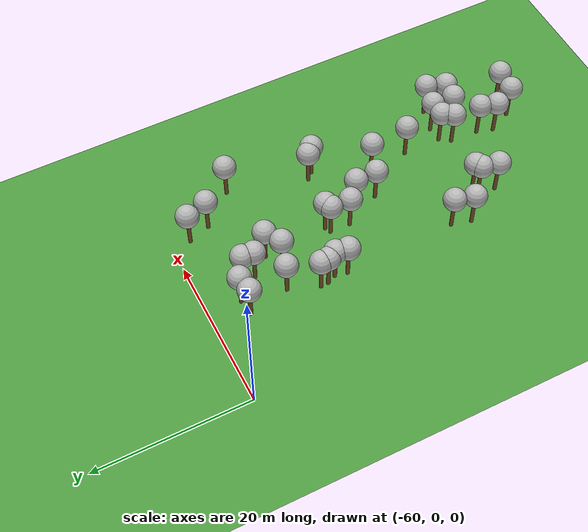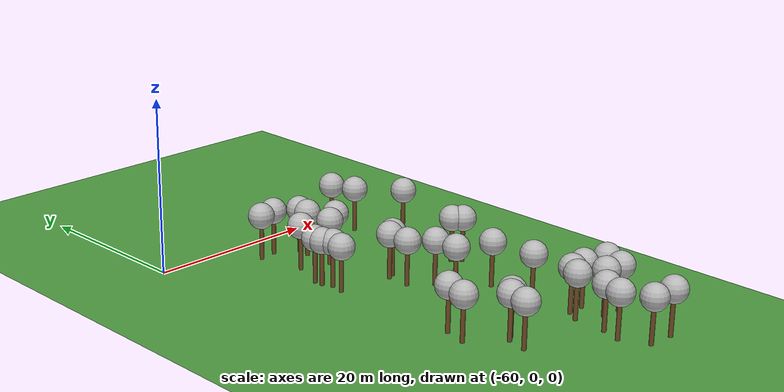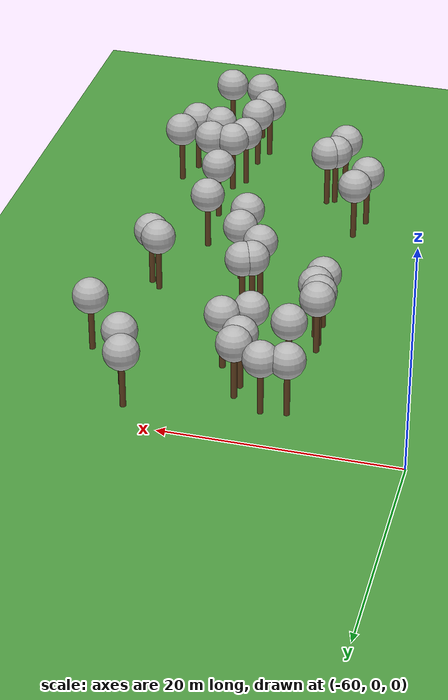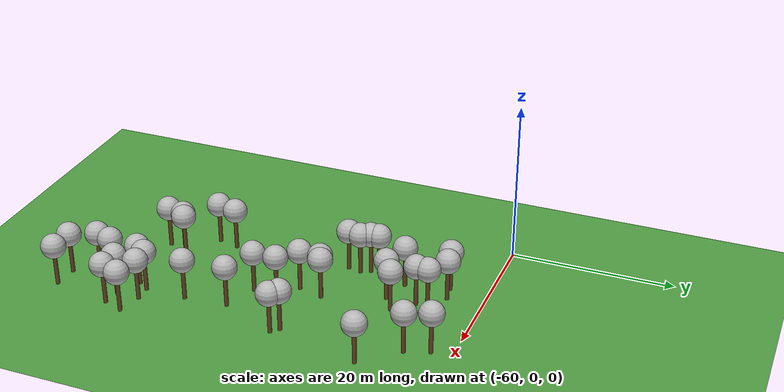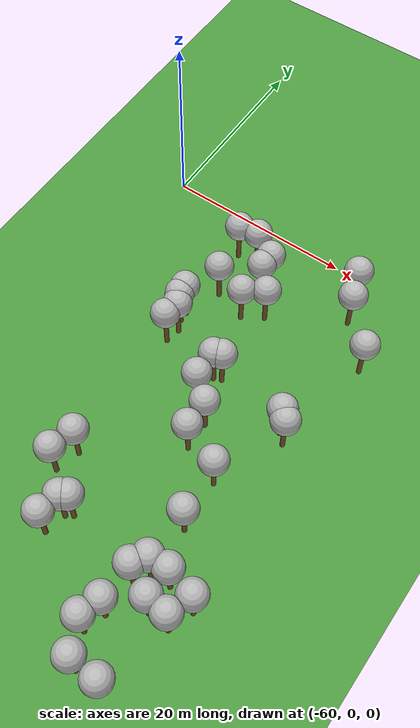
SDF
<sdf version="1.5">
 <world name="default">
  <model name="tree_simple481">
   <static>1</static>
   <link name="link">
    <pose>0 0 0.1 0 -0 0</pose>
    <collision name="collision_trunk">
     <pose>0 0 2 0 -0 0</pose>
     <geometry><cylinder><radius>0.25</radius><length>4</length></cylinder></geometry>
    </collision>
    <collision name="collision_treetop">
     <pose>0 0 5.2 0 -0 0</pose>
     <geometry><sphere><radius>1.5</radius></sphere></geometry>
    </collision>
    <visual name="trunk">
     <pose>0 0 2 0 -0 0</pose>
     <geometry><cylinder><radius>0.25</radius><length>4</length></cylinder></geometry>
     <material>
      <script>
       <uri>model://tree_simple/scripts</uri>
       <uri>model://tree_simple/materials/textures</uri>
       <name>TreeSimple/Trunk</name>
      </script>
     </material>
    </visual>
    <visual name="treetop">
     <pose>0 0 5.2 0 -0 0</pose>
     <geometry><sphere><radius>1.5</radius></sphere></geometry>
     <material>
      <script>
       <uri>model://tree_simple/scripts</uri>
       <uri>model://tree_simple/materials/textures</uri>
       <name>TreeSimple/Treetop</name>
      </script>
     </material>
    </visual>
   </link>
   <pose>-37.2553351017 -39.4739685818 0 0 -0 0</pose>
  </model>
  <model name="tree_simple438">
   <static>1</static>
   <link name="link">
    <pose>0 0 0.1 0 -0 0</pose>
    <collision name="collision_trunk">
     <pose>0 0 2 0 -0 0</pose>
     <geometry><cylinder><radius>0.25</radius><length>4</length></cylinder></geometry>
    </collision>
    <collision name="collision_treetop">
     <pose>0 0 5.2 0 -0 0</pose>
     <geometry><sphere><radius>1.5</radius></sphere></geometry>
    </collision>
    <visual name="trunk">
     <pose>0 0 2 0 -0 0</pose>
     <geometry><cylinder><radius>0.25</radius><length>4</length></cylinder></geometry>
     <material>
      <script>
       <uri>model://tree_simple/scripts</uri>
       <uri>model://tree_simple/materials/textures</uri>
       <name>TreeSimple/Trunk</name>
      </script>
     </material>
    </visual>
    <visual name="treetop">
     <pose>0 0 5.2 0 -0 0</pose>
     <geometry><sphere><radius>1.5</radius></sphere></geometry>
     <material>
      <script>
       <uri>model://tree_simple/scripts</uri>
       <uri>model://tree_simple/materials/textures</uri>
       <name>TreeSimple/Treetop</name>
      </script>
     </material>
    </visual>
   </link>
   <pose>-34.2898013361 -38.0039942016 0 0 -0 0</pose>
  </model>
  <model name="tree_simple434">
   <static>1</static>
   <link name="link">
    <pose>0 0 0.1 0 -0 0</pose>
    <collision name="collision_trunk">
     <pose>0 0 2 0 -0 0</pose>
     <geometry><cylinder><radius>0.25</radius><length>4</length></cylinder></geometry>
    </collision>
    <collision name="collision_treetop">
     <pose>0 0 5.2 0 -0 0</pose>
     <geometry><sphere><radius>1.5</radius></sphere></geometry>
    </collision>
    <visual name="trunk">
     <pose>0 0 2 0 -0 0</pose>
     <geometry><cylinder><radius>0.25</radius><length>4</length></cylinder></geometry>
     <material>
      <script>
       <uri>model://tree_simple/scripts</uri>
       <uri>model://tree_simple/materials/textures</uri>
       <name>TreeSimple/Trunk</name>
      </script>
     </material>
    </visual>
    <visual name="treetop">
     <pose>0 0 5.2 0 -0 0</pose>
     <geometry><sphere><radius>1.5</radius></sphere></geometry>
     <material>
      <script>
       <uri>model://tree_simple/scripts</uri>
       <uri>model://tree_simple/materials/textures</uri>
       <name>TreeSimple/Treetop</name>
      </script>
     </material>
    </visual>
   </link>
   <pose>-43.1297442783 -18.5304452852 0 0 -0 0</pose>
  </model>
  <model name="tree_simple416">
   <static>1</static>
   <link name="link">
    <pose>0 0 0.1 0 -0 0</pose>
    <collision name="collision_trunk">
     <pose>0 0 2 0 -0 0</pose>
     <geometry><cylinder><radius>0.25</radius><length>4</length></cylinder></geometry>
    </collision>
    <collision name="collision_treetop">
     <pose>0 0 5.2 0 -0 0</pose>
     <geometry><sphere><radius>1.5</radius></sphere></geometry>
    </collision>
    <visual name="trunk">
     <pose>0 0 2 0 -0 0</pose>
     <geometry><cylinder><radius>0.25</radius><length>4</length></cylinder></geometry>
     <material>
      <script>
       <uri>model://tree_simple/scripts</uri>
       <uri>model://tree_simple/materials/textures</uri>
       <name>TreeSimple/Trunk</name>
      </script>
     </material>
    </visual>
    <visual name="treetop">
     <pose>0 0 5.2 0 -0 0</pose>
     <geometry><sphere><radius>1.5</radius></sphere></geometry>
     <material>
      <script>
       <uri>model://tree_simple/scripts</uri>
       <uri>model://tree_simple/materials/textures</uri>
       <name>TreeSimple/Treetop</name>
      </script>
     </material>
    </visual>
   </link>
   <pose>-31.2795871631 -38.7286210433 0 0 -0 0</pose>
  </model>
  <model name="tree_simple411">
   <static>1</static>
   <link name="link">
    <pose>0 0 0.1 0 -0 0</pose>
    <collision name="collision_trunk">
     <pose>0 0 2 0 -0 0</pose>
     <geometry><cylinder><radius>0.25</radius><length>4</length></cylinder></geometry>
    </collision>
    <collision name="collision_treetop">
     <pose>0 0 5.2 0 -0 0</pose>
     <geometry><sphere><radius>1.5</radius></sphere></geometry>
    </collision>
    <visual name="trunk">
     <pose>0 0 2 0 -0 0</pose>
     <geometry><cylinder><radius>0.25</radius><length>4</length></cylinder></geometry>
     <material>
      <script>
       <uri>model://tree_simple/scripts</uri>
       <uri>model://tree_simple/materials/textures</uri>
       <name>TreeSimple/Trunk</name>
      </script>
     </material>
    </visual>
    <visual name="treetop">
     <pose>0 0 5.2 0 -0 0</pose>
     <geometry><sphere><radius>1.5</radius></sphere></geometry>
     <material>
      <script>
       <uri>model://tree_simple/scripts</uri>
       <uri>model://tree_simple/materials/textures</uri>
       <name>TreeSimple/Treetop</name>
      </script>
     </material>
    </visual>
   </link>
   <pose>-32.1703266052 -41.1753069034 0 0 -0 0</pose>
  </model>
  <model name="tree_simple404">
   <static>1</static>
   <link name="link">
    <pose>0 0 0.1 0 -0 0</pose>
    <collision name="collision_trunk">
     <pose>0 0 2 0 -0 0</pose>
     <geometry><cylinder><radius>0.25</radius><length>4</length></cylinder></geometry>
    </collision>
    <collision name="collision_treetop">
     <pose>0 0 5.2 0 -0 0</pose>
     <geometry><sphere><radius>1.5</radius></sphere></geometry>
    </collision>
    <visual name="trunk">
     <pose>0 0 2 0 -0 0</pose>
     <geometry><cylinder><radius>0.25</radius><length>4</length></cylinder></geometry>
     <material>
      <script>
       <uri>model://tree_simple/scripts</uri>
       <uri>model://tree_simple/materials/textures</uri>
       <name>TreeSimple/Trunk</name>
      </script>
     </material>
    </visual>
    <visual name="treetop">
     <pose>0 0 5.2 0 -0 0</pose>
     <geometry><sphere><radius>1.5</radius></sphere></geometry>
     <material>
      <script>
       <uri>model://tree_simple/scripts</uri>
       <uri>model://tree_simple/materials/textures</uri>
       <name>TreeSimple/Treetop</name>
      </script>
     </material>
    </visual>
   </link>
   <pose>-45.4192895763 -37.6687183978 0 0 -0 0</pose>
  </model>
  <model name="tree_simple403">
   <static>1</static>
   <link name="link">
    <pose>0 0 0.1 0 -0 0</pose>
    <collision name="collision_trunk">
     <pose>0 0 2 0 -0 0</pose>
     <geometry><cylinder><radius>0.25</radius><length>4</length></cylinder></geometry>
    </collision>
    <collision name="collision_treetop">
     <pose>0 0 5.2 0 -0 0</pose>
     <geometry><sphere><radius>1.5</radius></sphere></geometry>
    </collision>
    <visual name="trunk">
     <pose>0 0 2 0 -0 0</pose>
     <geometry><cylinder><radius>0.25</radius><length>4</length></cylinder></geometry>
     <material>
      <script>
       <uri>model://tree_simple/scripts</uri>
       <uri>model://tree_simple/materials/textures</uri>
       <name>TreeSimple/Trunk</name>
      </script>
     </material>
    </visual>
    <visual name="treetop">
     <pose>0 0 5.2 0 -0 0</pose>
     <geometry><sphere><radius>1.5</radius></sphere></geometry>
     <material>
      <script>
       <uri>model://tree_simple/scripts</uri>
       <uri>model://tree_simple/materials/textures</uri>
       <name>TreeSimple/Treetop</name>
      </script>
     </material>
    </visual>
   </link>
   <pose>-49.5316989744 -17.555694289 0 0 -0 0</pose>
  </model>
  <model name="tree_simple396">
   <static>1</static>
   <link name="link">
    <pose>0 0 0.1 0 -0 0</pose>
    <collision name="collision_trunk">
     <pose>0 0 2 0 -0 0</pose>
     <geometry><cylinder><radius>0.25</radius><length>4</length></cylinder></geometry>
    </collision>
    <collision name="collision_treetop">
     <pose>0 0 5.2 0 -0 0</pose>
     <geometry><sphere><radius>1.5</radius></sphere></geometry>
    </collision>
    <visual name="trunk">
     <pose>0 0 2 0 -0 0</pose>
     <geometry><cylinder><radius>0.25</radius><length>4</length></cylinder></geometry>
     <material>
      <script>
       <uri>model://tree_simple/scripts</uri>
       <uri>model://tree_simple/materials/textures</uri>
       <name>TreeSimple/Trunk</name>
      </script>
     </material>
    </visual>
    <visual name="treetop">
     <pose>0 0 5.2 0 -0 0</pose>
     <geometry><sphere><radius>1.5</radius></sphere></geometry>
     <material>
      <script>
       <uri>model://tree_simple/scripts</uri>
       <uri>model://tree_simple/materials/textures</uri>
       <name>TreeSimple/Treetop</name>
      </script>
     </material>
    </visual>
   </link>
   <pose>-34.4954871255 -19.8377607827 0 0 -0 0</pose>
  </model>
  <model name="tree_simple375">
   <static>1</static>
   <link name="link">
    <pose>0 0 0.1 0 -0 0</pose>
    <collision name="collision_trunk">
     <pose>0 0 2 0 -0 0</pose>
     <geometry><cylinder><radius>0.25</radius><length>4</length></cylinder></geometry>
    </collision>
    <collision name="collision_treetop">
     <pose>0 0 5.2 0 -0 0</pose>
     <geometry><sphere><radius>1.5</radius></sphere></geometry>
    </collision>
    <visual name="trunk">
     <pose>0 0 2 0 -0 0</pose>
     <geometry><cylinder><radius>0.25</radius><length>4</length></cylinder></geometry>
     <material>
      <script>
       <uri>model://tree_simple/scripts</uri>
       <uri>model://tree_simple/materials/textures</uri>
       <name>TreeSimple/Trunk</name>
      </script>
     </material>
    </visual>
    <visual name="treetop">
     <pose>0 0 5.2 0 -0 0</pose>
     <geometry><sphere><radius>1.5</radius></sphere></geometry>
     <material>
      <script>
       <uri>model://tree_simple/scripts</uri>
       <uri>model://tree_simple/materials/textures</uri>
       <name>TreeSimple/Treetop</name>
      </script>
     </material>
    </visual>
   </link>
   <pose>-48.3845088934 -9.9079742 0 0 -0 0</pose>
  </model>
  <model name="tree_simple373">
   <static>1</static>
   <link name="link">
    <pose>0 0 0.1 0 -0 0</pose>
    <collision name="collision_trunk">
     <pose>0 0 2 0 -0 0</pose>
     <geometry><cylinder><radius>0.25</radius><length>4</length></cylinder></geometry>
    </collision>
    <collision name="collision_treetop">
     <pose>0 0 5.2 0 -0 0</pose>
     <geometry><sphere><radius>1.5</radius></sphere></geometry>
    </collision>
    <visual name="trunk">
     <pose>0 0 2 0 -0 0</pose>
     <geometry><cylinder><radius>0.25</radius><length>4</length></cylinder></geometry>
     <material>
      <script>
       <uri>model://tree_simple/scripts</uri>
       <uri>model://tree_simple/materials/textures</uri>
       <name>TreeSimple/Trunk</name>
      </script>
     </material>
    </visual>
    <visual name="treetop">
     <pose>0 0 5.2 0 -0 0</pose>
     <geometry><sphere><radius>1.5</radius></sphere></geometry>
     <material>
      <script>
       <uri>model://tree_simple/scripts</uri>
       <uri>model://tree_simple/materials/textures</uri>
       <name>TreeSimple/Treetop</name>
      </script>
     </material>
    </visual>
   </link>
   <pose>-43.1842610619 -21.2191114712 0 0 -0 0</pose>
  </model>
  <model name="tree_simple370">
   <static>1</static>
   <link name="link">
    <pose>0 0 0.1 0 -0 0</pose>
    <collision name="collision_trunk">
     <pose>0 0 2 0 -0 0</pose>
     <geometry><cylinder><radius>0.25</radius><length>4</length></cylinder></geometry>
    </collision>
    <collision name="collision_treetop">
     <pose>0 0 5.2 0 -0 0</pose>
     <geometry><sphere><radius>1.5</radius></sphere></geometry>
    </collision>
    <visual name="trunk">
     <pose>0 0 2 0 -0 0</pose>
     <geometry><cylinder><radius>0.25</radius><length>4</length></cylinder></geometry>
     <material>
      <script>
       <uri>model://tree_simple/scripts</uri>
       <uri>model://tree_simple/materials/textures</uri>
       <name>TreeSimple/Trunk</name>
      </script>
     </material>
    </visual>
    <visual name="treetop">
     <pose>0 0 5.2 0 -0 0</pose>
     <geometry><sphere><radius>1.5</radius></sphere></geometry>
     <material>
      <script>
       <uri>model://tree_simple/scripts</uri>
       <uri>model://tree_simple/materials/textures</uri>
       <name>TreeSimple/Treetop</name>
      </script>
     </material>
    </visual>
   </link>
   <pose>-36.749040883 -27.7198172667 0 0 -0 0</pose>
  </model>
  <model name="tree_simple369">
   <static>1</static>
   <link name="link">
    <pose>0 0 0.1 0 -0 0</pose>
    <collision name="collision_trunk">
     <pose>0 0 2 0 -0 0</pose>
     <geometry><cylinder><radius>0.25</radius><length>4</length></cylinder></geometry>
    </collision>
    <collision name="collision_treetop">
     <pose>0 0 5.2 0 -0 0</pose>
     <geometry><sphere><radius>1.5</radius></sphere></geometry>
    </collision>
    <visual name="trunk">
     <pose>0 0 2 0 -0 0</pose>
     <geometry><cylinder><radius>0.25</radius><length>4</length></cylinder></geometry>
     <material>
      <script>
       <uri>model://tree_simple/scripts</uri>
       <uri>model://tree_simple/materials/textures</uri>
       <name>TreeSimple/Trunk</name>
      </script>
     </material>
    </visual>
    <visual name="treetop">
     <pose>0 0 5.2 0 -0 0</pose>
     <geometry><sphere><radius>1.5</radius></sphere></geometry>
     <material>
      <script>
       <uri>model://tree_simple/scripts</uri>
       <uri>model://tree_simple/materials/textures</uri>
       <name>TreeSimple/Treetop</name>
      </script>
     </material>
    </visual>
   </link>
   <pose>-40.8904214301 -23.21757156 0 0 -0 0</pose>
  </model>
  <model name="tree_simple341">
   <static>1</static>
   <link name="link">
    <pose>0 0 0.1 0 -0 0</pose>
    <collision name="collision_trunk">
     <pose>0 0 2 0 -0 0</pose>
     <geometry><cylinder><radius>0.25</radius><length>4</length></cylinder></geometry>
    </collision>
    <collision name="collision_treetop">
     <pose>0 0 5.2 0 -0 0</pose>
     <geometry><sphere><radius>1.5</radius></sphere></geometry>
    </collision>
    <visual name="trunk">
     <pose>0 0 2 0 -0 0</pose>
     <geometry><cylinder><radius>0.25</radius><length>4</length></cylinder></geometry>
     <material>
      <script>
       <uri>model://tree_simple/scripts</uri>
       <uri>model://tree_simple/materials/textures</uri>
       <name>TreeSimple/Trunk</name>
      </script>
     </material>
    </visual>
    <visual name="treetop">
     <pose>0 0 5.2 0 -0 0</pose>
     <geometry><sphere><radius>1.5</radius></sphere></geometry>
     <material>
      <script>
       <uri>model://tree_simple/scripts</uri>
       <uri>model://tree_simple/materials/textures</uri>
       <name>TreeSimple/Treetop</name>
      </script>
     </material>
    </visual>
   </link>
   <pose>-49.5073976614 -4.58498276765 0 0 -0 0</pose>
  </model>
  <model name="tree_simple326">
   <static>1</static>
   <link name="link">
    <pose>0 0 0.1 0 -0 0</pose>
    <collision name="collision_trunk">
     <pose>0 0 2 0 -0 0</pose>
     <geometry><cylinder><radius>0.25</radius><length>4</length></cylinder></geometry>
    </collision>
    <collision name="collision_treetop">
     <pose>0 0 5.2 0 -0 0</pose>
     <geometry><sphere><radius>1.5</radius></sphere></geometry>
    </collision>
    <visual name="trunk">
     <pose>0 0 2 0 -0 0</pose>
     <geometry><cylinder><radius>0.25</radius><length>4</length></cylinder></geometry>
     <material>
      <script>
       <uri>model://tree_simple/scripts</uri>
       <uri>model://tree_simple/materials/textures</uri>
       <name>TreeSimple/Trunk</name>
      </script>
     </material>
    </visual>
    <visual name="treetop">
     <pose>0 0 5.2 0 -0 0</pose>
     <geometry><sphere><radius>1.5</radius></sphere></geometry>
     <material>
      <script>
       <uri>model://tree_simple/scripts</uri>
       <uri>model://tree_simple/materials/textures</uri>
       <name>TreeSimple/Treetop</name>
      </script>
     </material>
    </visual>
   </link>
   <pose>-44.8519520945 -5.80439962373 0 0 -0 0</pose>
  </model>
  <model name="tree_simple323">
   <static>1</static>
   <link name="link">
    <pose>0 0 0.1 0 -0 0</pose>
    <collision name="collision_trunk">
     <pose>0 0 2 0 -0 0</pose>
     <geometry><cylinder><radius>0.25</radius><length>4</length></cylinder></geometry>
    </collision>
    <collision name="collision_treetop">
     <pose>0 0 5.2 0 -0 0</pose>
     <geometry><sphere><radius>1.5</radius></sphere></geometry>
    </collision>
    <visual name="trunk">
     <pose>0 0 2 0 -0 0</pose>
     <geometry><cylinder><radius>0.25</radius><length>4</length></cylinder></geometry>
     <material>
      <script>
       <uri>model://tree_simple/scripts</uri>
       <uri>model://tree_simple/materials/textures</uri>
       <name>TreeSimple/Trunk</name>
      </script>
     </material>
    </visual>
    <visual name="treetop">
     <pose>0 0 5.2 0 -0 0</pose>
     <geometry><sphere><radius>1.5</radius></sphere></geometry>
     <material>
      <script>
       <uri>model://tree_simple/scripts</uri>
       <uri>model://tree_simple/materials/textures</uri>
       <name>TreeSimple/Treetop</name>
      </script>
     </material>
    </visual>
   </link>
   <pose>-44.9542016132 -10.9647646888 0 0 -0 0</pose>
  </model>
  <model name="tree_simple318">
   <static>1</static>
   <link name="link">
    <pose>0 0 0.1 0 -0 0</pose>
    <collision name="collision_trunk">
     <pose>0 0 2 0 -0 0</pose>
     <geometry><cylinder><radius>0.25</radius><length>4</length></cylinder></geometry>
    </collision>
    <collision name="collision_treetop">
     <pose>0 0 5.2 0 -0 0</pose>
     <geometry><sphere><radius>1.5</radius></sphere></geometry>
    </collision>
    <visual name="trunk">
     <pose>0 0 2 0 -0 0</pose>
     <geometry><cylinder><radius>0.25</radius><length>4</length></cylinder></geometry>
     <material>
      <script>
       <uri>model://tree_simple/scripts</uri>
       <uri>model://tree_simple/materials/textures</uri>
       <name>TreeSimple/Trunk</name>
      </script>
     </material>
    </visual>
    <visual name="treetop">
     <pose>0 0 5.2 0 -0 0</pose>
     <geometry><sphere><radius>1.5</radius></sphere></geometry>
     <material>
      <script>
       <uri>model://tree_simple/scripts</uri>
       <uri>model://tree_simple/materials/textures</uri>
       <name>TreeSimple/Treetop</name>
      </script>
     </material>
    </visual>
   </link>
   <pose>-35.5307244579 -5.31130875944 0 0 -0 0</pose>
  </model>
  <model name="tree_simple312">
   <static>1</static>
   <link name="link">
    <pose>0 0 0.1 0 -0 0</pose>
    <collision name="collision_trunk">
     <pose>0 0 2 0 -0 0</pose>
     <geometry><cylinder><radius>0.25</radius><length>4</length></cylinder></geometry>
    </collision>
    <collision name="collision_treetop">
     <pose>0 0 5.2 0 -0 0</pose>
     <geometry><sphere><radius>1.5</radius></sphere></geometry>
    </collision>
    <visual name="trunk">
     <pose>0 0 2 0 -0 0</pose>
     <geometry><cylinder><radius>0.25</radius><length>4</length></cylinder></geometry>
     <material>
      <script>
       <uri>model://tree_simple/scripts</uri>
       <uri>model://tree_simple/materials/textures</uri>
       <name>TreeSimple/Trunk</name>
      </script>
     </material>
    </visual>
    <visual name="treetop">
     <pose>0 0 5.2 0 -0 0</pose>
     <geometry><sphere><radius>1.5</radius></sphere></geometry>
     <material>
      <script>
       <uri>model://tree_simple/scripts</uri>
       <uri>model://tree_simple/materials/textures</uri>
       <name>TreeSimple/Treetop</name>
      </script>
     </material>
    </visual>
   </link>
   <pose>-49.0127914394 -32.4704975261 0 0 -0 0</pose>
  </model>
  <model name="tree_simple259">
   <static>1</static>
   <link name="link">
    <pose>0 0 0.1 0 -0 0</pose>
    <collision name="collision_trunk">
     <pose>0 0 2 0 -0 0</pose>
     <geometry><cylinder><radius>0.25</radius><length>4</length></cylinder></geometry>
    </collision>
    <collision name="collision_treetop">
     <pose>0 0 5.2 0 -0 0</pose>
     <geometry><sphere><radius>1.5</radius></sphere></geometry>
    </collision>
    <visual name="trunk">
     <pose>0 0 2 0 -0 0</pose>
     <geometry><cylinder><radius>0.25</radius><length>4</length></cylinder></geometry>
     <material>
      <script>
       <uri>model://tree_simple/scripts</uri>
       <uri>model://tree_simple/materials/textures</uri>
       <name>TreeSimple/Trunk</name>
      </script>
     </material>
    </visual>
    <visual name="treetop">
     <pose>0 0 5.2 0 -0 0</pose>
     <geometry><sphere><radius>1.5</radius></sphere></geometry>
     <material>
      <script>
       <uri>model://tree_simple/scripts</uri>
       <uri>model://tree_simple/materials/textures</uri>
       <name>TreeSimple/Treetop</name>
      </script>
     </material>
    </visual>
   </link>
   <pose>-49.2281564384 -15.9494105315 0 0 -0 0</pose>
  </model>
  <model name="tree_simple250">
   <static>1</static>
   <link name="link">
    <pose>0 0 0.1 0 -0 0</pose>
    <collision name="collision_trunk">
     <pose>0 0 2 0 -0 0</pose>
     <geometry><cylinder><radius>0.25</radius><length>4</length></cylinder></geometry>
    </collision>
    <collision name="collision_treetop">
     <pose>0 0 5.2 0 -0 0</pose>
     <geometry><sphere><radius>1.5</radius></sphere></geometry>
    </collision>
    <visual name="trunk">
     <pose>0 0 2 0 -0 0</pose>
     <geometry><cylinder><radius>0.25</radius><length>4</length></cylinder></geometry>
     <material>
      <script>
       <uri>model://tree_simple/scripts</uri>
       <uri>model://tree_simple/materials/textures</uri>
       <name>TreeSimple/Trunk</name>
      </script>
     </material>
    </visual>
    <visual name="treetop">
     <pose>0 0 5.2 0 -0 0</pose>
     <geometry><sphere><radius>1.5</radius></sphere></geometry>
     <material>
      <script>
       <uri>model://tree_simple/scripts</uri>
       <uri>model://tree_simple/materials/textures</uri>
       <name>TreeSimple/Treetop</name>
      </script>
     </material>
    </visual>
   </link>
   <pose>-33.6030138898 -48.597626204 0 0 -0 0</pose>
  </model>
  <model name="tree_simple241">
   <static>1</static>
   <link name="link">
    <pose>0 0 0.1 0 -0 0</pose>
    <collision name="collision_trunk">
     <pose>0 0 2 0 -0 0</pose>
     <geometry><cylinder><radius>0.25</radius><length>4</length></cylinder></geometry>
    </collision>
    <collision name="collision_treetop">
     <pose>0 0 5.2 0 -0 0</pose>
     <geometry><sphere><radius>1.5</radius></sphere></geometry>
    </collision>
    <visual name="trunk">
     <pose>0 0 2 0 -0 0</pose>
     <geometry><cylinder><radius>0.25</radius><length>4</length></cylinder></geometry>
     <material>
      <script>
       <uri>model://tree_simple/scripts</uri>
       <uri>model://tree_simple/materials/textures</uri>
       <name>TreeSimple/Trunk</name>
      </script>
     </material>
    </visual>
    <visual name="treetop">
     <pose>0 0 5.2 0 -0 0</pose>
     <geometry><sphere><radius>1.5</radius></sphere></geometry>
     <material>
      <script>
       <uri>model://tree_simple/scripts</uri>
       <uri>model://tree_simple/materials/textures</uri>
       <name>TreeSimple/Treetop</name>
      </script>
     </material>
    </visual>
   </link>
   <pose>-37.439891657 -43.2397532509 0 0 -0 0</pose>
  </model>
  <model name="tree_simple240">
   <static>1</static>
   <link name="link">
    <pose>0 0 0.1 0 -0 0</pose>
    <collision name="collision_trunk">
     <pose>0 0 2 0 -0 0</pose>
     <geometry><cylinder><radius>0.25</radius><length>4</length></cylinder></geometry>
    </collision>
    <collision name="collision_treetop">
     <pose>0 0 5.2 0 -0 0</pose>
     <geometry><sphere><radius>1.5</radius></sphere></geometry>
    </collision>
    <visual name="trunk">
     <pose>0 0 2 0 -0 0</pose>
     <geometry><cylinder><radius>0.25</radius><length>4</length></cylinder></geometry>
     <material>
      <script>
       <uri>model://tree_simple/scripts</uri>
       <uri>model://tree_simple/materials/textures</uri>
       <name>TreeSimple/Trunk</name>
      </script>
     </material>
    </visual>
    <visual name="treetop">
     <pose>0 0 5.2 0 -0 0</pose>
     <geometry><sphere><radius>1.5</radius></sphere></geometry>
     <material>
      <script>
       <uri>model://tree_simple/scripts</uri>
       <uri>model://tree_simple/materials/textures</uri>
       <name>TreeSimple/Treetop</name>
      </script>
     </material>
    </visual>
   </link>
   <pose>-49.7673729573 -14.7908164176 0 0 -0 0</pose>
  </model>
  <model name="tree_simple239">
   <static>1</static>
   <link name="link">
    <pose>0 0 0.1 0 -0 0</pose>
    <collision name="collision_trunk">
     <pose>0 0 2 0 -0 0</pose>
     <geometry><cylinder><radius>0.25</radius><length>4</length></cylinder></geometry>
    </collision>
    <collision name="collision_treetop">
     <pose>0 0 5.2 0 -0 0</pose>
     <geometry><sphere><radius>1.5</radius></sphere></geometry>
    </collision>
    <visual name="trunk">
     <pose>0 0 2 0 -0 0</pose>
     <geometry><cylinder><radius>0.25</radius><length>4</length></cylinder></geometry>
     <material>
      <script>
       <uri>model://tree_simple/scripts</uri>
       <uri>model://tree_simple/materials/textures</uri>
       <name>TreeSimple/Trunk</name>
      </script>
     </material>
    </visual>
    <visual name="treetop">
     <pose>0 0 5.2 0 -0 0</pose>
     <geometry><sphere><radius>1.5</radius></sphere></geometry>
     <material>
      <script>
       <uri>model://tree_simple/scripts</uri>
       <uri>model://tree_simple/materials/textures</uri>
       <name>TreeSimple/Treetop</name>
      </script>
     </material>
    </visual>
   </link>
   <pose>-44.9803872855 -7.28495240751 0 0 -0 0</pose>
  </model>
  <model name="tree_simple221">
   <static>1</static>
   <link name="link">
    <pose>0 0 0.1 0 -0 0</pose>
    <collision name="collision_trunk">
     <pose>0 0 2 0 -0 0</pose>
     <geometry><cylinder><radius>0.25</radius><length>4</length></cylinder></geometry>
    </collision>
    <collision name="collision_treetop">
     <pose>0 0 5.2 0 -0 0</pose>
     <geometry><sphere><radius>1.5</radius></sphere></geometry>
    </collision>
    <visual name="trunk">
     <pose>0 0 2 0 -0 0</pose>
     <geometry><cylinder><radius>0.25</radius><length>4</length></cylinder></geometry>
     <material>
      <script>
       <uri>model://tree_simple/scripts</uri>
       <uri>model://tree_simple/materials/textures</uri>
       <name>TreeSimple/Trunk</name>
      </script>
     </material>
    </visual>
    <visual name="treetop">
     <pose>0 0 5.2 0 -0 0</pose>
     <geometry><sphere><radius>1.5</radius></sphere></geometry>
     <material>
      <script>
       <uri>model://tree_simple/scripts</uri>
       <uri>model://tree_simple/materials/textures</uri>
       <name>TreeSimple/Treetop</name>
      </script>
     </material>
    </visual>
   </link>
   <pose>-33.630014063 -20.7003393039 0 0 -0 0</pose>
  </model>
  <model name="tree_simple220">
   <static>1</static>
   <link name="link">
    <pose>0 0 0.1 0 -0 0</pose>
    <collision name="collision_trunk">
     <pose>0 0 2 0 -0 0</pose>
     <geometry><cylinder><radius>0.25</radius><length>4</length></cylinder></geometry>
    </collision>
    <collision name="collision_treetop">
     <pose>0 0 5.2 0 -0 0</pose>
     <geometry><sphere><radius>1.5</radius></sphere></geometry>
    </collision>
    <visual name="trunk">
     <pose>0 0 2 0 -0 0</pose>
     <geometry><cylinder><radius>0.25</radius><length>4</length></cylinder></geometry>
     <material>
      <script>
       <uri>model://tree_simple/scripts</uri>
       <uri>model://tree_simple/materials/textures</uri>
       <name>TreeSimple/Trunk</name>
      </script>
     </material>
    </visual>
    <visual name="treetop">
     <pose>0 0 5.2 0 -0 0</pose>
     <geometry><sphere><radius>1.5</radius></sphere></geometry>
     <material>
      <script>
       <uri>model://tree_simple/scripts</uri>
       <uri>model://tree_simple/materials/textures</uri>
       <name>TreeSimple/Treetop</name>
      </script>
     </material>
    </visual>
   </link>
   <pose>-36.5535815793 -2.43279627312 0 0 -0 0</pose>
  </model>
  <model name="tree_simple212">
   <static>1</static>
   <link name="link">
    <pose>0 0 0.1 0 -0 0</pose>
    <collision name="collision_trunk">
     <pose>0 0 2 0 -0 0</pose>
     <geometry><cylinder><radius>0.25</radius><length>4</length></cylinder></geometry>
    </collision>
    <collision name="collision_treetop">
     <pose>0 0 5.2 0 -0 0</pose>
     <geometry><sphere><radius>1.5</radius></sphere></geometry>
    </collision>
    <visual name="trunk">
     <pose>0 0 2 0 -0 0</pose>
     <geometry><cylinder><radius>0.25</radius><length>4</length></cylinder></geometry>
     <material>
      <script>
       <uri>model://tree_simple/scripts</uri>
       <uri>model://tree_simple/materials/textures</uri>
       <name>TreeSimple/Trunk</name>
      </script>
     </material>
    </visual>
    <visual name="treetop">
     <pose>0 0 5.2 0 -0 0</pose>
     <geometry><sphere><radius>1.5</radius></sphere></geometry>
     <material>
      <script>
       <uri>model://tree_simple/scripts</uri>
       <uri>model://tree_simple/materials/textures</uri>
       <name>TreeSimple/Treetop</name>
      </script>
     </material>
    </visual>
   </link>
   <pose>-40.8079801591 -26.1075975904 0 0 -0 0</pose>
  </model>
  <model name="tree_simple193">
   <static>1</static>
   <link name="link">
    <pose>0 0 0.1 0 -0 0</pose>
    <collision name="collision_trunk">
     <pose>0 0 2 0 -0 0</pose>
     <geometry><cylinder><radius>0.25</radius><length>4</length></cylinder></geometry>
    </collision>
    <collision name="collision_treetop">
     <pose>0 0 5.2 0 -0 0</pose>
     <geometry><sphere><radius>1.5</radius></sphere></geometry>
    </collision>
    <visual name="trunk">
     <pose>0 0 2 0 -0 0</pose>
     <geometry><cylinder><radius>0.25</radius><length>4</length></cylinder></geometry>
     <material>
      <script>
       <uri>model://tree_simple/scripts</uri>
       <uri>model://tree_simple/materials/textures</uri>
       <name>TreeSimple/Trunk</name>
      </script>
     </material>
    </visual>
    <visual name="treetop">
     <pose>0 0 5.2 0 -0 0</pose>
     <geometry><sphere><radius>1.5</radius></sphere></geometry>
     <material>
      <script>
       <uri>model://tree_simple/scripts</uri>
       <uri>model://tree_simple/materials/textures</uri>
       <name>TreeSimple/Treetop</name>
      </script>
     </material>
    </visual>
   </link>
   <pose>-38.0891263237 -45.387736402 0 0 -0 0</pose>
  </model>
  <model name="tree_simple176">
   <static>1</static>
   <link name="link">
    <pose>0 0 0.1 0 -0 0</pose>
    <collision name="collision_trunk">
     <pose>0 0 2 0 -0 0</pose>
     <geometry><cylinder><radius>0.25</radius><length>4</length></cylinder></geometry>
    </collision>
    <collision name="collision_treetop">
     <pose>0 0 5.2 0 -0 0</pose>
     <geometry><sphere><radius>1.5</radius></sphere></geometry>
    </collision>
    <visual name="trunk">
     <pose>0 0 2 0 -0 0</pose>
     <geometry><cylinder><radius>0.25</radius><length>4</length></cylinder></geometry>
     <material>
      <script>
       <uri>model://tree_simple/scripts</uri>
       <uri>model://tree_simple/materials/textures</uri>
       <name>TreeSimple/Trunk</name>
      </script>
     </material>
    </visual>
    <visual name="treetop">
     <pose>0 0 5.2 0 -0 0</pose>
     <geometry><sphere><radius>1.5</radius></sphere></geometry>
     <material>
      <script>
       <uri>model://tree_simple/scripts</uri>
       <uri>model://tree_simple/materials/textures</uri>
       <name>TreeSimple/Treetop</name>
      </script>
     </material>
    </visual>
   </link>
   <pose>-34.4242902166 -40.9558999471 0 0 -0 0</pose>
  </model>
  <model name="tree_simple172">
   <static>1</static>
   <link name="link">
    <pose>0 0 0.1 0 -0 0</pose>
    <collision name="collision_trunk">
     <pose>0 0 2 0 -0 0</pose>
     <geometry><cylinder><radius>0.25</radius><length>4</length></cylinder></geometry>
    </collision>
    <collision name="collision_treetop">
     <pose>0 0 5.2 0 -0 0</pose>
     <geometry><sphere><radius>1.5</radius></sphere></geometry>
    </collision>
    <visual name="trunk">
     <pose>0 0 2 0 -0 0</pose>
     <geometry><cylinder><radius>0.25</radius><length>4</length></cylinder></geometry>
     <material>
      <script>
       <uri>model://tree_simple/scripts</uri>
       <uri>model://tree_simple/materials/textures</uri>
       <name>TreeSimple/Trunk</name>
      </script>
     </material>
    </visual>
    <visual name="treetop">
     <pose>0 0 5.2 0 -0 0</pose>
     <geometry><sphere><radius>1.5</radius></sphere></geometry>
     <material>
      <script>
       <uri>model://tree_simple/scripts</uri>
       <uri>model://tree_simple/materials/textures</uri>
       <name>TreeSimple/Treetop</name>
      </script>
     </material>
    </visual>
   </link>
   <pose>-36.3388025574 -38.096874475 0 0 -0 0</pose>
  </model>
  <model name="tree_simple171">
   <static>1</static>
   <link name="link">
    <pose>0 0 0.1 0 -0 0</pose>
    <collision name="collision_trunk">
     <pose>0 0 2 0 -0 0</pose>
     <geometry><cylinder><radius>0.25</radius><length>4</length></cylinder></geometry>
    </collision>
    <collision name="collision_treetop">
     <pose>0 0 5.2 0 -0 0</pose>
     <geometry><sphere><radius>1.5</radius></sphere></geometry>
    </collision>
    <visual name="trunk">
     <pose>0 0 2 0 -0 0</pose>
     <geometry><cylinder><radius>0.25</radius><length>4</length></cylinder></geometry>
     <material>
      <script>
       <uri>model://tree_simple/scripts</uri>
       <uri>model://tree_simple/materials/textures</uri>
       <name>TreeSimple/Trunk</name>
      </script>
     </material>
    </visual>
    <visual name="treetop">
     <pose>0 0 5.2 0 -0 0</pose>
     <geometry><sphere><radius>1.5</radius></sphere></geometry>
     <material>
      <script>
       <uri>model://tree_simple/scripts</uri>
       <uri>model://tree_simple/materials/textures</uri>
       <name>TreeSimple/Treetop</name>
      </script>
     </material>
    </visual>
   </link>
   <pose>-47.4177148869 -4.27301626353 0 0 -0 0</pose>
  </model>
  <model name="tree_simple146">
   <static>1</static>
   <link name="link">
    <pose>0 0 0.1 0 -0 0</pose>
    <collision name="collision_trunk">
     <pose>0 0 2 0 -0 0</pose>
     <geometry><cylinder><radius>0.25</radius><length>4</length></cylinder></geometry>
    </collision>
    <collision name="collision_treetop">
     <pose>0 0 5.2 0 -0 0</pose>
     <geometry><sphere><radius>1.5</radius></sphere></geometry>
    </collision>
    <visual name="trunk">
     <pose>0 0 2 0 -0 0</pose>
     <geometry><cylinder><radius>0.25</radius><length>4</length></cylinder></geometry>
     <material>
      <script>
       <uri>model://tree_simple/scripts</uri>
       <uri>model://tree_simple/materials/textures</uri>
       <name>TreeSimple/Trunk</name>
      </script>
     </material>
    </visual>
    <visual name="treetop">
     <pose>0 0 5.2 0 -0 0</pose>
     <geometry><sphere><radius>1.5</radius></sphere></geometry>
     <material>
      <script>
       <uri>model://tree_simple/scripts</uri>
       <uri>model://tree_simple/materials/textures</uri>
       <name>TreeSimple/Treetop</name>
      </script>
     </material>
    </visual>
   </link>
   <pose>-42.8686467761 -9.68210025238 0 0 -0 0</pose>
  </model>
  <model name="tree_simple129">
   <static>1</static>
   <link name="link">
    <pose>0 0 0.1 0 -0 0</pose>
    <collision name="collision_trunk">
     <pose>0 0 2 0 -0 0</pose>
     <geometry><cylinder><radius>0.25</radius><length>4</length></cylinder></geometry>
    </collision>
    <collision name="collision_treetop">
     <pose>0 0 5.2 0 -0 0</pose>
     <geometry><sphere><radius>1.5</radius></sphere></geometry>
    </collision>
    <visual name="trunk">
     <pose>0 0 2 0 -0 0</pose>
     <geometry><cylinder><radius>0.25</radius><length>4</length></cylinder></geometry>
     <material>
      <script>
       <uri>model://tree_simple/scripts</uri>
       <uri>model://tree_simple/materials/textures</uri>
       <name>TreeSimple/Trunk</name>
      </script>
     </material>
    </visual>
    <visual name="treetop">
     <pose>0 0 5.2 0 -0 0</pose>
     <geometry><sphere><radius>1.5</radius></sphere></geometry>
     <material>
      <script>
       <uri>model://tree_simple/scripts</uri>
       <uri>model://tree_simple/materials/textures</uri>
       <name>TreeSimple/Treetop</name>
      </script>
     </material>
    </visual>
   </link>
   <pose>-46.082766629 -38.1150560833 0 0 -0 0</pose>
  </model>
  <model name="tree_simple91">
   <static>1</static>
   <link name="link">
    <pose>0 0 0.1 0 -0 0</pose>
    <collision name="collision_trunk">
     <pose>0 0 2 0 -0 0</pose>
     <geometry><cylinder><radius>0.25</radius><length>4</length></cylinder></geometry>
    </collision>
    <collision name="collision_treetop">
     <pose>0 0 5.2 0 -0 0</pose>
     <geometry><sphere><radius>1.5</radius></sphere></geometry>
    </collision>
    <visual name="trunk">
     <pose>0 0 2 0 -0 0</pose>
     <geometry><cylinder><radius>0.25</radius><length>4</length></cylinder></geometry>
     <material>
      <script>
       <uri>model://tree_simple/scripts</uri>
       <uri>model://tree_simple/materials/textures</uri>
       <name>TreeSimple/Trunk</name>
      </script>
     </material>
    </visual>
    <visual name="treetop">
     <pose>0 0 5.2 0 -0 0</pose>
     <geometry><sphere><radius>1.5</radius></sphere></geometry>
     <material>
      <script>
       <uri>model://tree_simple/scripts</uri>
       <uri>model://tree_simple/materials/textures</uri>
       <name>TreeSimple/Treetop</name>
      </script>
     </material>
    </visual>
   </link>
   <pose>-49.8341450527 -13.7707098392 0 0 -0 0</pose>
  </model>
  <model name="tree_simple83">
   <static>1</static>
   <link name="link">
    <pose>0 0 0.1 0 -0 0</pose>
    <collision name="collision_trunk">
     <pose>0 0 2 0 -0 0</pose>
     <geometry><cylinder><radius>0.25</radius><length>4</length></cylinder></geometry>
    </collision>
    <collision name="collision_treetop">
     <pose>0 0 5.2 0 -0 0</pose>
     <geometry><sphere><radius>1.5</radius></sphere></geometry>
    </collision>
    <visual name="trunk">
     <pose>0 0 2 0 -0 0</pose>
     <geometry><cylinder><radius>0.25</radius><length>4</length></cylinder></geometry>
     <material>
      <script>
       <uri>model://tree_simple/scripts</uri>
       <uri>model://tree_simple/materials/textures</uri>
       <name>TreeSimple/Trunk</name>
      </script>
     </material>
    </visual>
    <visual name="treetop">
     <pose>0 0 5.2 0 -0 0</pose>
     <geometry><sphere><radius>1.5</radius></sphere></geometry>
     <material>
      <script>
       <uri>model://tree_simple/scripts</uri>
       <uri>model://tree_simple/materials/textures</uri>
       <name>TreeSimple/Treetop</name>
      </script>
     </material>
    </visual>
   </link>
   <pose>-49.6712926958 -35.0160914231 0 0 -0 0</pose>
  </model>
  <model name="tree_simple75">
   <static>1</static>
   <link name="link">
    <pose>0 0 0.1 0 -0 0</pose>
    <collision name="collision_trunk">
     <pose>0 0 2 0 -0 0</pose>
     <geometry><cylinder><radius>0.25</radius><length>4</length></cylinder></geometry>
    </collision>
    <collision name="collision_treetop">
     <pose>0 0 5.2 0 -0 0</pose>
     <geometry><sphere><radius>1.5</radius></sphere></geometry>
    </collision>
    <visual name="trunk">
     <pose>0 0 2 0 -0 0</pose>
     <geometry><cylinder><radius>0.25</radius><length>4</length></cylinder></geometry>
     <material>
      <script>
       <uri>model://tree_simple/scripts</uri>
       <uri>model://tree_simple/materials/textures</uri>
       <name>TreeSimple/Trunk</name>
      </script>
     </material>
    </visual>
    <visual name="treetop">
     <pose>0 0 5.2 0 -0 0</pose>
     <geometry><sphere><radius>1.5</radius></sphere></geometry>
     <material>
      <script>
       <uri>model://tree_simple/scripts</uri>
       <uri>model://tree_simple/materials/textures</uri>
       <name>TreeSimple/Treetop</name>
      </script>
     </material>
    </visual>
   </link>
   <pose>-42.3546026357 -18.1931921773 0 0 -0 0</pose>
  </model>
  <model name="tree_simple67">
   <static>1</static>
   <link name="link">
    <pose>0 0 0.1 0 -0 0</pose>
    <collision name="collision_trunk">
     <pose>0 0 2 0 -0 0</pose>
     <geometry><cylinder><radius>0.25</radius><length>4</length></cylinder></geometry>
    </collision>
    <collision name="collision_treetop">
     <pose>0 0 5.2 0 -0 0</pose>
     <geometry><sphere><radius>1.5</radius></sphere></geometry>
    </collision>
    <visual name="trunk">
     <pose>0 0 2 0 -0 0</pose>
     <geometry><cylinder><radius>0.25</radius><length>4</length></cylinder></geometry>
     <material>
      <script>
       <uri>model://tree_simple/scripts</uri>
       <uri>model://tree_simple/materials/textures</uri>
       <name>TreeSimple/Trunk</name>
      </script>
     </material>
    </visual>
    <visual name="treetop">
     <pose>0 0 5.2 0 -0 0</pose>
     <geometry><sphere><radius>1.5</radius></sphere></geometry>
     <material>
      <script>
       <uri>model://tree_simple/scripts</uri>
       <uri>model://tree_simple/materials/textures</uri>
       <name>TreeSimple/Treetop</name>
      </script>
     </material>
    </visual>
   </link>
   <pose>-36.6256451993 -48.3909294088 0 0 -0 0</pose>
  </model>
  <model name="tree_simple62">
   <static>1</static>
   <link name="link">
    <pose>0 0 0.1 0 -0 0</pose>
    <collision name="collision_trunk">
     <pose>0 0 2 0 -0 0</pose>
     <geometry><cylinder><radius>0.25</radius><length>4</length></cylinder></geometry>
    </collision>
    <collision name="collision_treetop">
     <pose>0 0 5.2 0 -0 0</pose>
     <geometry><sphere><radius>1.5</radius></sphere></geometry>
    </collision>
    <visual name="trunk">
     <pose>0 0 2 0 -0 0</pose>
     <geometry><cylinder><radius>0.25</radius><length>4</length></cylinder></geometry>
     <material>
      <script>
       <uri>model://tree_simple/scripts</uri>
       <uri>model://tree_simple/materials/textures</uri>
       <name>TreeSimple/Trunk</name>
      </script>
     </material>
    </visual>
    <visual name="treetop">
     <pose>0 0 5.2 0 -0 0</pose>
     <geometry><sphere><radius>1.5</radius></sphere></geometry>
     <material>
      <script>
       <uri>model://tree_simple/scripts</uri>
       <uri>model://tree_simple/materials/textures</uri>
       <name>TreeSimple/Treetop</name>
      </script>
     </material>
    </visual>
   </link>
   <pose>-31.7033167044 -9.58889275635 0 0 -0 0</pose>
  </model>
  <model name="tree_simple41">
   <static>1</static>
   <link name="link">
    <pose>0 0 0.1 0 -0 0</pose>
    <collision name="collision_trunk">
     <pose>0 0 2 0 -0 0</pose>
     <geometry><cylinder><radius>0.25</radius><length>4</length></cylinder></geometry>
    </collision>
    <collision name="collision_treetop">
     <pose>0 0 5.2 0 -0 0</pose>
     <geometry><sphere><radius>1.5</radius></sphere></geometry>
    </collision>
    <visual name="trunk">
     <pose>0 0 2 0 -0 0</pose>
     <geometry><cylinder><radius>0.25</radius><length>4</length></cylinder></geometry>
     <material>
      <script>
       <uri>model://tree_simple/scripts</uri>
       <uri>model://tree_simple/materials/textures</uri>
       <name>TreeSimple/Trunk</name>
      </script>
     </material>
    </visual>
    <visual name="treetop">
     <pose>0 0 5.2 0 -0 0</pose>
     <geometry><sphere><radius>1.5</radius></sphere></geometry>
     <material>
      <script>
       <uri>model://tree_simple/scripts</uri>
       <uri>model://tree_simple/materials/textures</uri>
       <name>TreeSimple/Treetop</name>
      </script>
     </material>
    </visual>
   </link>
   <pose>-46.5792527836 -40.3552194107 0 0 -0 0</pose>
  </model>
  <model name="tree_simple15">
   <static>1</static>
   <link name="link">
    <pose>0 0 0.1 0 -0 0</pose>
    <collision name="collision_trunk">
     <pose>0 0 2 0 -0 0</pose>
     <geometry><cylinder><radius>0.25</radius><length>4</length></cylinder></geometry>
    </collision>
    <collision name="collision_treetop">
     <pose>0 0 5.2 0 -0 0</pose>
     <geometry><sphere><radius>1.5</radius></sphere></geometry>
    </collision>
    <visual name="trunk">
     <pose>0 0 2 0 -0 0</pose>
     <geometry><cylinder><radius>0.25</radius><length>4</length></cylinder></geometry>
     <material>
      <script>
       <uri>model://tree_simple/scripts</uri>
       <uri>model://tree_simple/materials/textures</uri>
       <name>TreeSimple/Trunk</name>
      </script>
     </material>
    </visual>
    <visual name="treetop">
     <pose>0 0 5.2 0 -0 0</pose>
     <geometry><sphere><radius>1.5</radius></sphere></geometry>
     <material>
      <script>
       <uri>model://tree_simple/scripts</uri>
       <uri>model://tree_simple/materials/textures</uri>
       <name>TreeSimple/Treetop</name>
      </script>
     </material>
    </visual>
   </link>
   <pose>-36.3232609195 -32.993952596 0 0 -0 0</pose>
  </model>
  <model name="ground_plane">
   <static>true</static>
   <link name="link">
    <collision name="collision">
     <geometry><plane><normal>0 0 1</normal><size>250 250</size></plane></geometry>
     <surface><friction><ode><mu>100</mu><mu2>50</mu2></ode></friction></surface>
    </collision>
    <visual name="grass">
     <cast_shadows>false</cast_shadows>
     <geometry><plane><normal>0 0 1</normal><size>150 250</size></plane></geometry>
     <material>
      <script><uri>file://media/materials/scripts/gazebo.material</uri><name>Gazebo/Grass</name></script>
     </material>
    </visual>
   </link>
  </model>
 </world>
</sdf>
